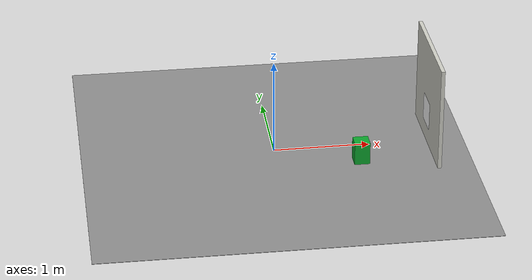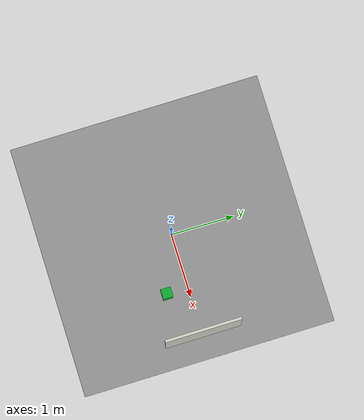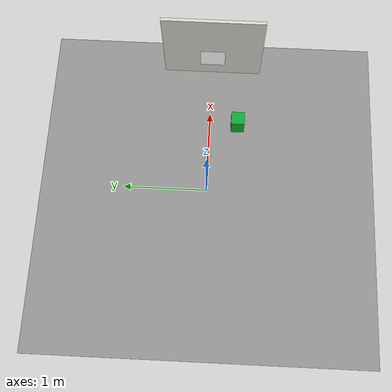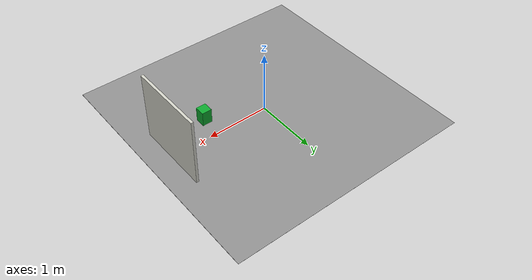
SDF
<?xml version="1.0"?>
<sdf version="1.6">
  <world name="d435i_apriltag_test">
    <plugin name="gazebo_ros_state" filename="libgazebo_ros_state.so">
      <update_rate>10.0</update_rate>
    </plugin>

    <include>
      <uri>model://sun</uri>
    </include>

    <physics name="ode_physics" type="ode">
      <max_step_size>0.001</max_step_size>
      <real_time_update_rate>1000</real_time_update_rate>
    </physics>

    <model name="apriltag_ground_plane">
      <static>true</static>
      <link name="link">
        <collision name="collision">
          <geometry>
            <plane>
              <normal>0 0 1</normal>
              <size>4 4</size>
            </plane>
          </geometry>
        </collision>
        <visual name="visual">
          <cast_shadows>false</cast_shadows>
          <geometry>
            <plane>
              <normal>0 0 1</normal>
              <size>4 4</size>
            </plane>
          </geometry>
          <material>
            <ambient>0.56 0.56 0.56 1</ambient>
            <diffuse>0.56 0.56 0.56 1</diffuse>
          </material>
        </visual>
      </link>
    </model>

    <model name="apriltag_back_wall">
      <pose>1.63 0.0 0.55 0 0 0</pose>
      <static>true</static>
      <link name="link">
        <visual name="visual">
          <geometry>
            <box>
              <size>0.04 1.20 1.10</size>
            </box>
          </geometry>
          <material>
            <ambient>0.82 0.82 0.78 1</ambient>
            <diffuse>0.82 0.82 0.78 1</diffuse>
          </material>
        </visual>
      </link>
    </model>

    <include>
      <name>apriltag_36h11_00000_target</name>
      <uri>model://apriltag_36h11_00000</uri>
      <pose>1.60 0.0 0.35 0 -1.57079632679 0</pose>
    </include>

    <model name="depth_reference_green_box">
      <pose>0.86 -0.34 0.12 0 0 0</pose>
      <static>true</static>
      <link name="link">
        <visual name="visual">
          <geometry>
            <box>
              <size>0.16 0.16 0.24</size>
            </box>
          </geometry>
          <material>
            <ambient>0.05 0.65 0.18 1</ambient>
            <diffuse>0.05 0.65 0.18 1</diffuse>
          </material>
        </visual>
      </link>
    </model>
  </world>
</sdf>

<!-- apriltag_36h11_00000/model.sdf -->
<sdf version="1.6">
  <model name="apriltag_36h11_00000">
    <static>true</static>
    <link name="tag_link">
      <visual name="tag_visual">
        <cast_shadows>false</cast_shadows>
        <geometry>
          <plane>
            <normal>0 0 1</normal>
            <size>0.30 0.30</size>
          </plane>
        </geometry>
        <material>
          <script>
            <uri>model://apriltag_36h11_00000/materials/scripts</uri>
            <uri>model://apriltag_36h11_00000/materials/textures</uri>
            <name>AprilTag36h11/Id00000</name>
          </script>
          <ambient>1 1 1 1</ambient>
          <diffuse>1 1 1 1</diffuse>
          <specular>0 0 0 1</specular>
        </material>
      </visual>
    </link>
  </model>
</sdf>
